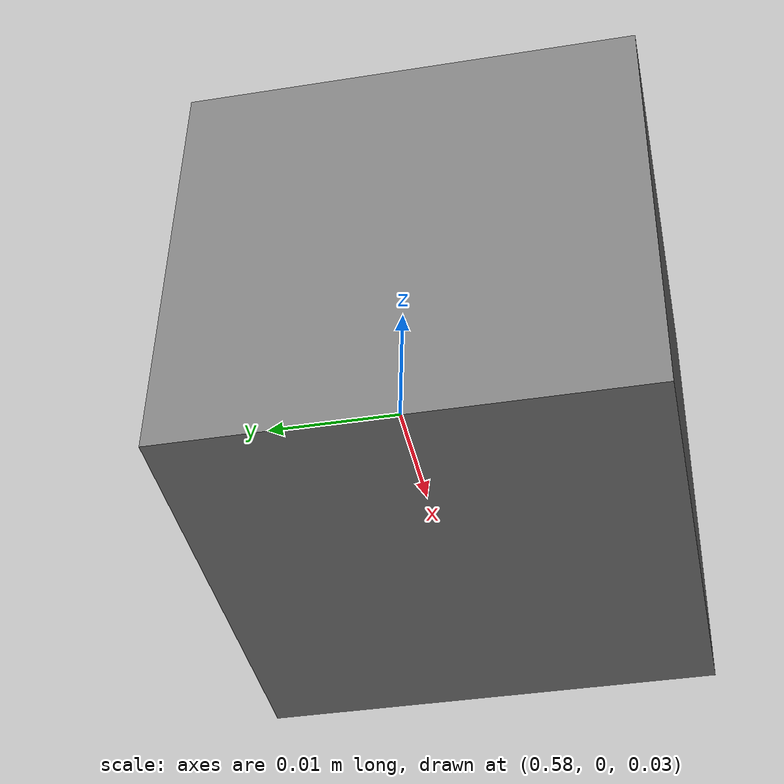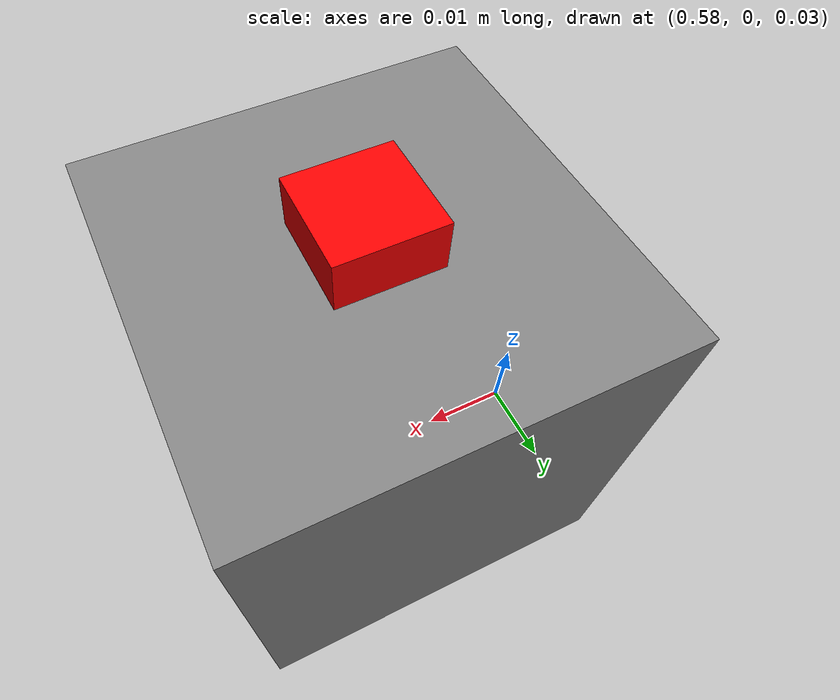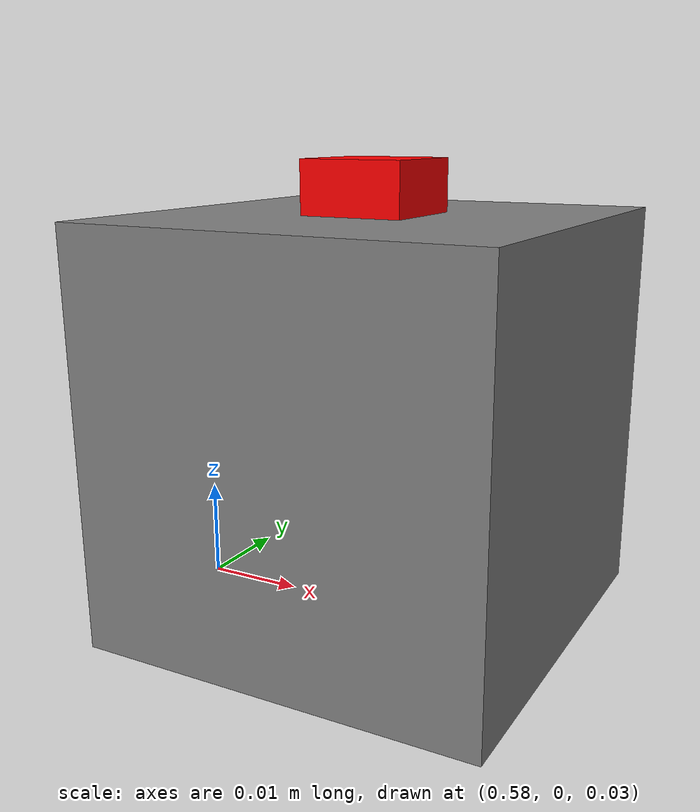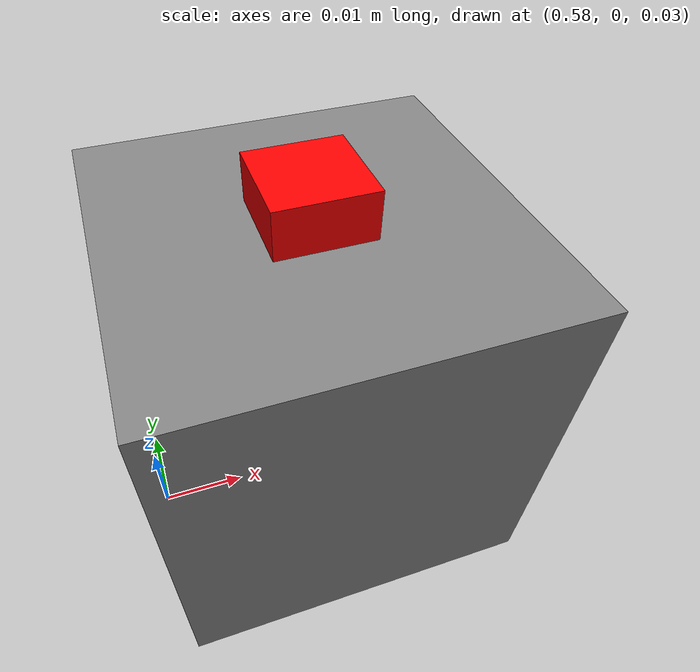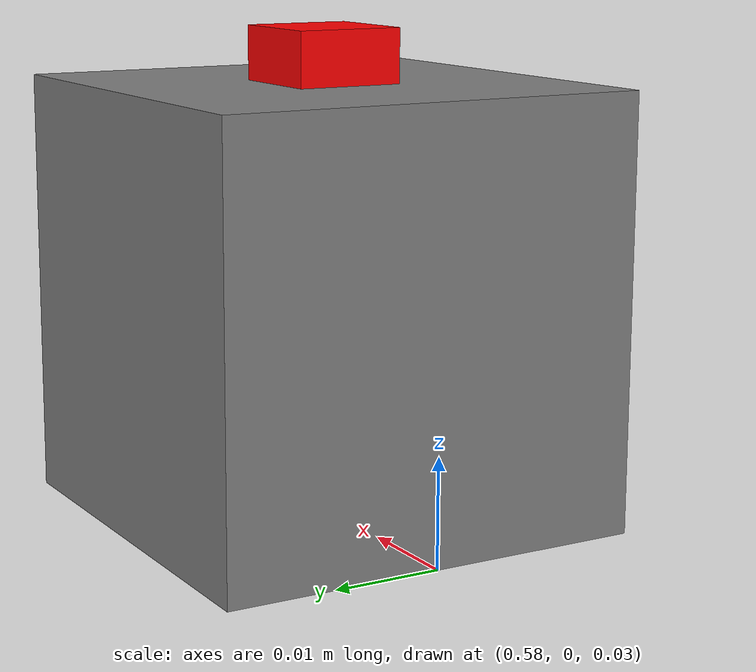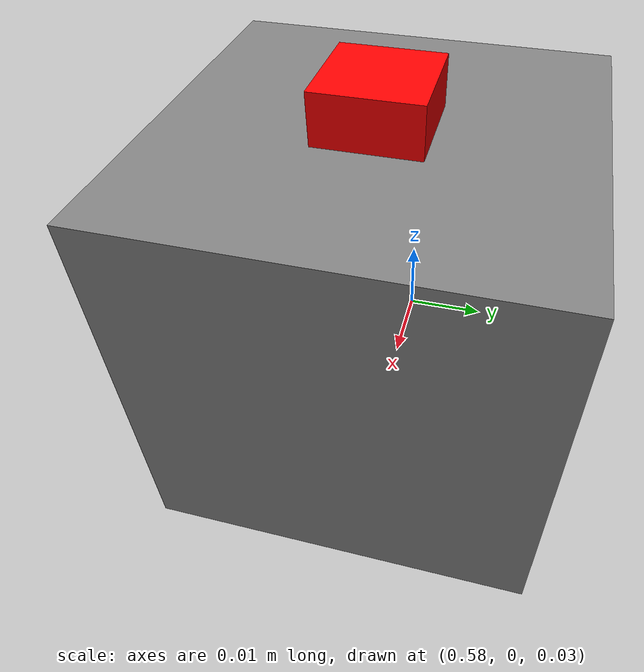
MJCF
<mujoco model="MjPhyCube">
  <worldbody>
    <body name="cube" pos="0.6 0.0 0.05" quat="1 0 0 0">
      <geom pos="0 0 0" size="0.02 0.02 0.02" type="box" solref="0.001 0.1" />
      <site name="top" rgba="1 0 0 1" pos="0 0 0.02" type="box" />
      <freejoint />
    </body>
  </worldbody>
  <sensor>
    <framepos objtype="site" objname="top" />
    <framexaxis objtype="site" objname="top" />
    <frameyaxis objtype="site" objname="top" />
    <framezaxis objtype="site" objname="top" />
  </sensor>
</mujoco>
